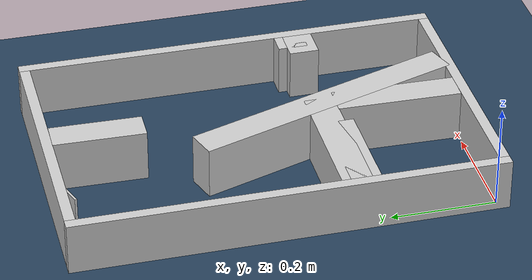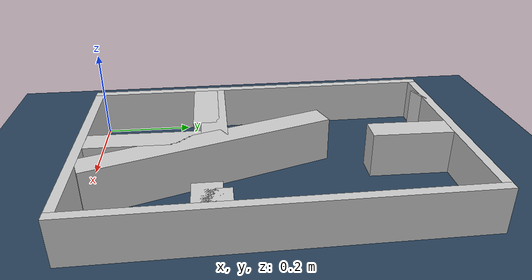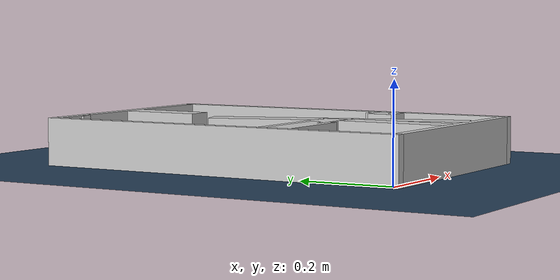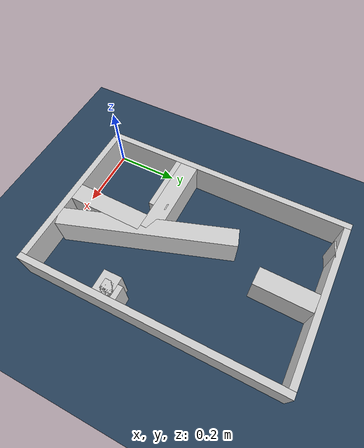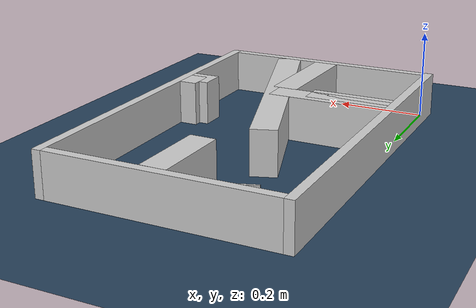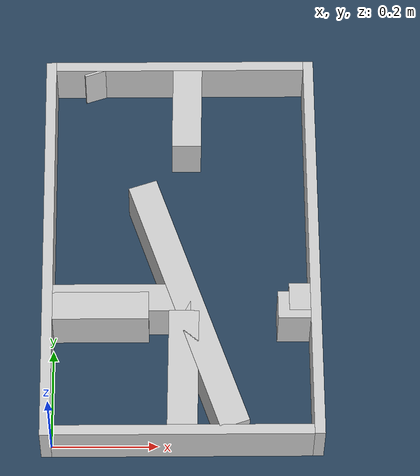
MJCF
<?xml version="1.0" ?>
<mujoco model="generated_real_template">
  <compiler angle="degree"/>
  <option timestep="0.002" integrator="implicitfast" iterations="100" cone="elliptic"/>
  <default>
    <geom density="1"/>
  </default>
  <asset>
    <texture builtin="gradient" height="3072" rgb1="0.3 0.5 0.7" rgb2="0 0 0" type="skybox" width="512"/>
    <texture builtin="checker" height="300" mark="edge" markrgb="0.8 0.8 0.8" name="groundplane" rgb1="0.2 0.3 0.4" rgb2="0.1 0.2 0.3" type="2d" width="300"/>
    <material name="groundplane" reflectance="0.2" texrepeat="5 5" texture="groundplane" texuniform="true"/>
  </asset>
  <worldbody>
    <light dir="0 0 -1" directional="true" pos="0 0 1.5"/>
    <geom name="floor" type="plane" condim="4" friction="0.5 0.005 0.001" material="groundplane" size="0 0 0.05"/>
    <body name="walls">
      <geom name="wall_boundary_left" type="box" condim="4" friction="1.0 0.005 0.0001" rgba="0.8 0.8 0.8 1" pos="-0.010000 0.387500 0.050000" euler="0 0 0.000000" size="0.010000 0.407500 0.050000"/>
      <geom name="wall_boundary_right" type="box" condim="4" friction="1.0 0.005 0.0001" rgba="0.8 0.8 0.8 1" pos="0.500000 0.387500 0.050000" euler="0 0 0.000000" size="0.010000 0.407500 0.050000"/>
      <geom name="wall_boundary_bottom" type="box" condim="4" friction="1.0 0.005 0.0001" rgba="0.8 0.8 0.8 1" pos="0.245000 -0.010000 0.050000" euler="0 0 0.000000" size="0.245000 0.010000 0.050000"/>
      <geom name="wall_boundary_top" type="box" condim="4" friction="1.0 0.005 0.0001" rgba="0.8 0.8 0.8 1" pos="0.245000 0.785000 0.050000" euler="0 0 0.000000" size="0.245000 0.010000 0.050000"/>
      <geom name="wall_inner_1_1" type="box" condim="4" friction="1.0 0.005 0.0001" rgba="0.8 0.8 0.8 1" pos="0.091433 0.249069 0.050000" euler="0 0 0.000000" size="0.091433 0.028500 0.050000"/>
      <geom name="wall_inner_1_2" type="box" condim="4" friction="1.0 0.005 0.0001" rgba="0.8 0.8 0.8 1" pos="0.459038 0.249069 0.050000" euler="0 0 0.000000" size="0.030962 0.028500 0.050000"/>
      <geom name="wall_inner_2_1" type="box" condim="4" friction="1.0 0.005 0.0001" rgba="0.8 0.8 0.8 1" pos="0.257268 0.256482 0.050000" euler="0 0 108.579759" size="0.270585 0.028500 0.050000"/>
      <geom name="wall_inner_2_2" type="box" condim="4" friction="1.0 0.005 0.0001" rgba="0.8 0.8 0.8 1" pos="0.083711 0.772800 0.050000" euler="0 0 108.579759" size="0.002321 0.028500 0.050000"/>
      <geom name="wall_inner_3_1" type="box" condim="4" friction="1.0 0.005 0.0001" rgba="0.8 0.8 0.8 1" pos="0.131241 0.265991 0.050000" euler="0 0 0.000000" size="0.131241 0.028500 0.050000"/>
      <geom name="wall_inner_3_2" type="box" condim="4" friction="1.0 0.005 0.0001" rgba="0.8 0.8 0.8 1" pos="0.469759 0.265991 0.050000" euler="0 0 0.000000" size="0.020241 0.028500 0.050000"/>
      <geom name="wall_inner_4_1" type="box" condim="4" friction="1.0 0.005 0.0001" rgba="0.8 0.8 0.8 1" pos="0.247263 0.118855 0.050000" euler="0 0 88.833148" size="0.118879 0.028500 0.050000"/>
      <geom name="wall_inner_4_2" type="box" condim="4" friction="1.0 0.005 0.0001" rgba="0.8 0.8 0.8 1" pos="0.258842 0.687348 0.050000" euler="0 0 88.833148" size="0.087670 0.028500 0.050000"/>
    </body>
  </worldbody>
</mujoco>
